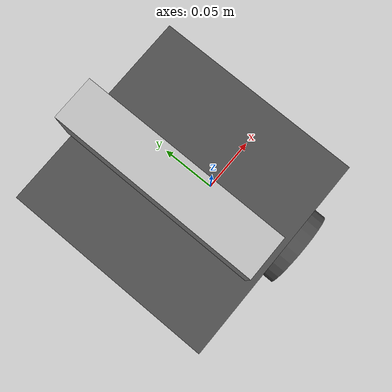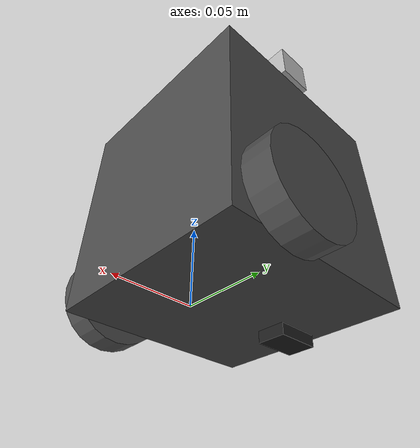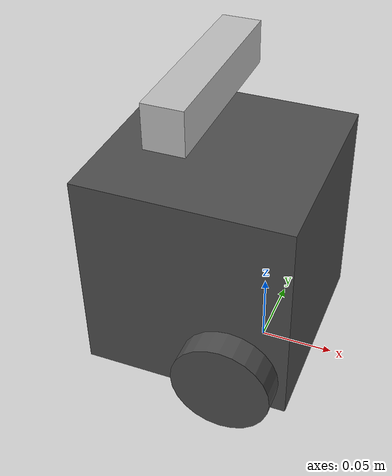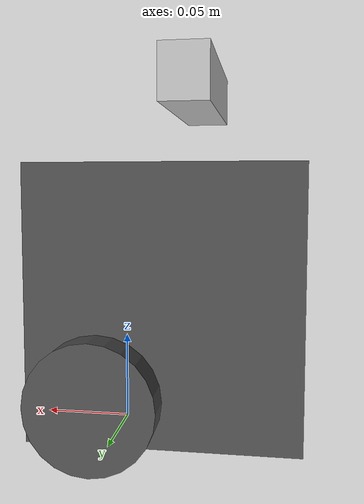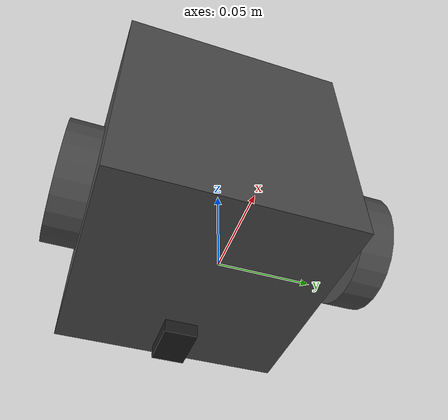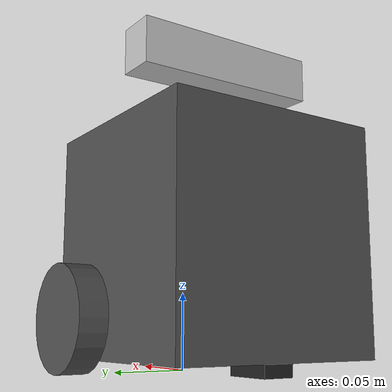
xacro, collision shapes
<?xml version="1.0" ?>
<robot name="custom_turtle" xmlns:xacro="http://ros.org/wiki/xacro">
  <xacro:include filename="$(find rl_tb3)/urdf/tb3commprop.xacro"/>
  <xacro:include filename="$(find rl_tb3)/urdf/tb3.gazebo.xacro"/>

  <xacro:property name="M_PI" value="3.1415926535897931" />
  <xacro:property name="d455_cam_depth_to_infra1_offset" value="0.0"/>
  <xacro:property name="d455_cam_depth_to_infra2_offset" value="-0.095"/>
  <xacro:property name="d455_cam_depth_to_color_offset" value="-0.059"/>
  <xacro:property name="d455_cam_width" value="0.124"/>
  <xacro:property name="d455_cam_height" value="0.029"/>
  <xacro:property name="d455_cam_depth" value="0.026"/>
  <xacro:property name="d455_cam_mount_from_center_offset" value="0.0158"/>
  <!-- glass cover is 0.1 mm inwards from front aluminium plate -->
  <xacro:property name="d455_glass_to_front" value="0.1e-3"/>
  <!-- see datasheet Revision 009, Fig. 4-4 page 68 -->
  <xacro:property name="d455_zero_depth_to_glass" value="4.55e-3"/>
  <!-- convenience precomputation to avoid clutter-->
  <xacro:property name="d455_mesh_x_offset" value="${d455_cam_mount_from_center_offset-d455_glass_to_front-d455_zero_depth_to_glass}"/>

  <!-- The following offset is relative to the physical d455 camera peripherial
  camera tripod mount -->
  <xacro:property name="d455_cam_depth_px" value="${d455_cam_mount_from_center_offset}"/>
  <xacro:property name="d455_cam_depth_py" value="0.0475"/>
  <xacro:property name="d455_cam_depth_pz" value="${d455_cam_height/2}"/>

  <link name="base_footprint"/>

  <joint name="base_joint" type="fixed">
    <parent link="base_footprint"/>
    <child link="base_link"/>
    <origin xyz="0.0 0.0 0.010" rpy="0 0 0"/>
  </joint>

  <link name="base_link">
    <visual>
      <origin xyz="-0.032 0 0.00" rpy="0 0 0"/>
      <geometry>
        <mesh filename="package://turtlebot3_description/meshes/bases/burger_base.stl" scale="0.001 0.001 0.001"/>
      </geometry>
      <material name="dark"/>
    </visual>

    <collision>
      <origin xyz="-0.032 0 0.070" rpy="0 0 0"/>
      <geometry>
        <box size="0.140 0.140 0.143"/>
      </geometry>
    </collision>

    <inertial>
      <origin xyz="0 0 0" rpy="0 0 0"/>
      <mass value="8.2573504e-01"/>
      <inertia ixx="2.2124416e-03" ixy="-1.2294101e-05" ixz="3.4938785e-05"
               iyy="2.1193702e-03" iyz="-5.0120904e-06"
               izz="2.0064271e-03" />
    </inertial>
  </link>

  <joint name="wheel_left_joint" type="continuous">
    <parent link="base_link"/>
    <child link="wheel_left_link"/>
    <origin xyz="0.0 0.08 0.023" rpy="-1.57 0 0"/>
    <axis xyz="0 0 1"/>
  </joint>

  <link name="wheel_left_link">
    <visual>
      <origin xyz="0 0 0" rpy="1.57 0 0"/>
      <geometry>
        <mesh filename="package://turtlebot3_description/meshes/wheels/left_tire.stl" scale="0.001 0.001 0.001"/>
      </geometry>
      <material name="dark"/>
    </visual>

    <collision>
      <origin xyz="0 0 0" rpy="0 0 0"/>
      <geometry>
        <cylinder length="0.018" radius="0.033"/>
      </geometry>
    </collision>

    <inertial>
      <origin xyz="0 0 0" />
      <mass value="2.8498940e-02" />
      <inertia ixx="1.1175580e-05" ixy="-4.2369783e-11" ixz="-5.9381719e-09"
               iyy="1.1192413e-05" iyz="-1.4400107e-11"
               izz="2.0712558e-05" />
      </inertial>
  </link>

  <joint name="wheel_right_joint" type="continuous">
    <parent link="base_link"/>
    <child link="wheel_right_link"/>
    <origin xyz="0.0 -0.080 0.023" rpy="-1.57 0 0"/>
    <axis xyz="0 0 1"/>
  </joint>

  <link name="wheel_right_link">
    <visual>
      <origin xyz="0 0 0" rpy="1.57 0 0"/>
      <geometry>
        <mesh filename="package://turtlebot3_description/meshes/wheels/right_tire.stl" scale="0.001 0.001 0.001"/>
      </geometry>
      <material name="dark"/>
    </visual>

    <collision>
      <origin xyz="0 0 0" rpy="0 0 0"/>
      <geometry>
        <cylinder length="0.018" radius="0.033"/>
      </geometry>
    </collision>

    <inertial>
      <origin xyz="0 0 0" />
      <mass value="2.8498940e-02" />
      <inertia ixx="1.1175580e-05" ixy="-4.2369783e-11" ixz="-5.9381719e-09"
               iyy="1.1192413e-05" iyz="-1.4400107e-11"
               izz="2.0712558e-05" />
      </inertial>
  </link>

  <joint name="caster_back_joint" type="fixed">
    <parent link="base_link"/>
    <child link="caster_back_link"/>
    <origin xyz="-0.081 0 -0.004" rpy="-1.57 0 0"/>
  </joint>

  <link name="caster_back_link">
    <collision>
      <origin xyz="0 0.001 0" rpy="0 0 0"/>
      <geometry>
        <box size="0.030 0.009 0.020"/>
      </geometry>
    </collision>

    <inertial>
      <origin xyz="0 0 0" />
      <mass value="0.005" />
      <inertia ixx="0.001" ixy="0.0" ixz="0.0"
               iyy="0.001" iyz="0.0"
               izz="0.001" />
    </inertial>
  </link>

  <joint name="imu_joint" type="fixed">
    <parent link="base_link"/>
    <child link="imu_link"/>
    <origin xyz="-0.032 0 0.068" rpy="0 0 0"/>
  </joint>

  <link name="imu_link"/>

  <joint name="camera_joint" type="fixed">
    <origin xyz="-0.045 0 0.171" rpy="0 0 0"/>
    <parent link="base_link"/>
    <child link="camera_bottom_screw_frame" />
  </joint>

  <link name="camera_bottom_screw_frame"/>

  <joint name="camera_link_joint" type="fixed">
    <origin xyz="${d455_mesh_x_offset} ${d455_cam_depth_py} ${d455_cam_depth_pz}" rpy="0 0 0"/>
    <parent link="camera_bottom_screw_frame"/>
    <child link="camera_link" />
  </joint>

  <link name="camera_link">
    <visual>
      <!-- the mesh origin is at front plate in between the two infrared camera axes -->
      <origin xyz="${d455_zero_depth_to_glass + d455_glass_to_front} ${-d455_cam_depth_py} 0" rpy="${M_PI/2} 0 ${M_PI/2}"/>
      <geometry>
        <mesh filename="package://rl_tb3/meshes/d455.stl" scale="0.001 0.001 0.001" />
      </geometry>
      <material name="aluminum"/>
    </visual>
    <collision>
      <origin xyz="${d455_zero_depth_to_glass-d455_cam_depth/2} ${-d455_cam_depth_py} 0" rpy="0 0 0"/>
      <geometry>
        <box size="${d455_cam_depth} ${d455_cam_width} ${d455_cam_height}"/>
      </geometry>
    </collision>
  </link>

  <joint name="camera_depth_joint" type="fixed">
    <origin xyz="0 0 0" rpy="0 0 0"/>
    <parent link="camera_link"/>
    <child link="camera_depth_frame" />
  </joint>

  <link name="camera_depth_frame"/>

  <joint name="camera_depth_optical_joint" type="fixed">
    <origin xyz="0 0 0" rpy="${-M_PI/2} 0 ${-M_PI/2}" />
    <parent link="camera_depth_frame" />
    <child link="camera_depth_optical_frame" />
  </joint>
  <link name="camera_depth_optical_frame"/>

  <joint name="camera_color_joint" type="fixed">
    <origin xyz="0 ${d455_cam_depth_to_color_offset} 0" rpy="0 0 0" />
    <parent link="camera_link" />
    <child link="camera_color_frame" />
  </joint>
  <link name="camera_color_frame"/>

  <joint name="camera_color_optical_joint" type="fixed">
    <origin xyz="0 0 0" rpy="${-M_PI/2} 0 ${-M_PI/2}" />
    <parent link="camera_color_frame" />
    <child link="camera_color_optical_frame" />
  </joint>
  <link name="camera_color_optical_frame"/>

</robot>

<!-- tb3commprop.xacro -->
<robot name="xacro_properties" xmlns:xacro="http://ros.org/wiki/xacro">

  <!-- Init colour -->
  <material name="black">
      <color rgba="0.0 0.0 0.0 1.0"/>
  </material>

  <material name="dark">
    <color rgba="0.3 0.3 0.3 1.0"/>
  </material>
  <material name="light_black">
    <color rgba="0.4 0.4 0.4 1.0"/>
  </material>

  <material name="blue">
    <color rgba="0.0 0.0 0.8 1.0"/>
  </material>

  <material name="green">
    <color rgba="0.0 0.8 0.0 1.0"/>
  </material>

  <material name="grey">
    <color rgba="0.5 0.5 0.5 1.0"/>
  </material>

  <material name="orange">
    <color rgba="${255/255} ${108/255} ${10/255} 1.0"/>
  </material>

  <material name="brown">
    <color rgba="${222/255} ${207/255} ${195/255} 1.0"/>
  </material>

  <material name="red">
    <color rgba="0.8 0.0 0.0 1.0"/>
  </material>

  <material name="white">
    <color rgba="1.0 1.0 1.0 1.0"/>
  </material>

  <material name='aluminum'>
    <color rgba = "${189/255} ${189/255} ${189/255} 1.0"/>
  </material>
</robot>
